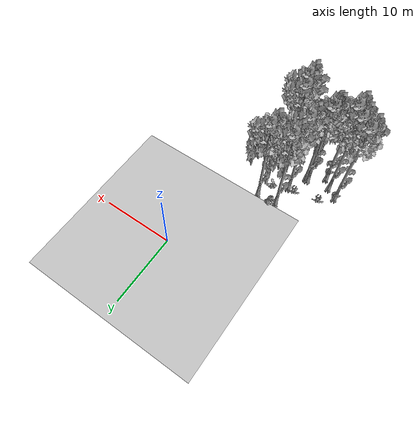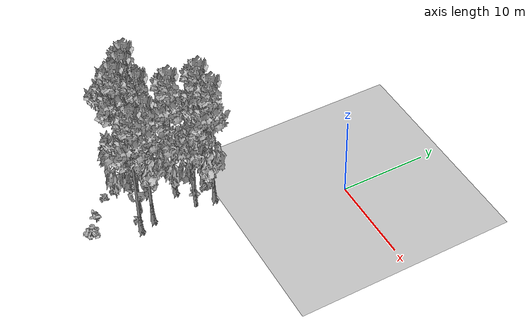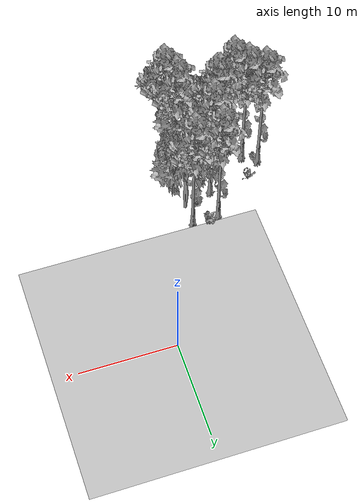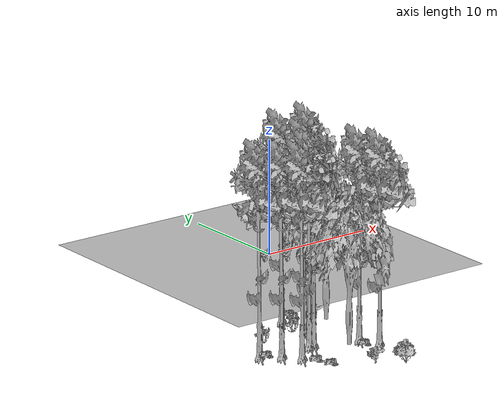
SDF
<sdf version="1.7">
 <world name="default">
  <model name="ground_plane">
   <static>1</static>
   <link name="link">
    <collision name="collision">
     <pose>-50 0 0 0 -0 0</pose>
     <geometry><plane><normal>0 0 1</normal><size>80 80</size></plane></geometry>
     <surface><contact><ode><min_depth>0.01</min_depth><max_vel>0</max_vel></ode></contact></surface>
    </collision>
    <visual name="grass">
     <cast_shadows>0</cast_shadows>
     <geometry>
      <mesh>
       <scale>0.46714285714285714 0.46714285714285714 0.1</scale>
       <uri>file://grass_plane/meshes/grass_plane.dae</uri>
      </mesh>
     </geometry>
    </visual>
   </link>
  </model>
  <model name="Tree 64">
   <static>1</static>
   <pose>-8.918844012901179 -16.294253281476337 0 1.57079 -0 0</pose>
   <link name="link">
    <collision name="collision">
     <geometry><mesh><scale>3.5 5 3.5</scale><uri>model://tree_9/meshes/tree_9.obj</uri></mesh></geometry>
    </collision>
    <visual name="visual">
     <geometry><mesh><scale>3.5 5 3.5</scale><uri>model://tree_9/meshes/tree_9.obj</uri></mesh></geometry>
    </visual>
   </link>
  </model>
  <model name="Tree 74">
   <static>1</static>
   <pose>-12.508498151794864 -20.705829657117896 0 1.57079 -0 0</pose>
   <link name="link">
    <collision name="collision">
     <geometry><mesh><scale>3.5 5 3.5</scale><uri>model://tree_9/meshes/tree_9.obj</uri></mesh></geometry>
    </collision>
    <visual name="visual">
     <geometry><mesh><scale>3.5 5 3.5</scale><uri>model://tree_9/meshes/tree_9.obj</uri></mesh></geometry>
    </visual>
   </link>
  </model>
  <model name="Tree 95">
   <static>1</static>
   <pose>-13.539596763071113 -19.452690196570124 0 1.57079 -0 0</pose>
   <link name="link">
    <collision name="collision">
     <geometry><mesh><scale>3.5 5 3.5</scale><uri>model://tree_9/meshes/tree_9.obj</uri></mesh></geometry>
    </collision>
    <visual name="visual">
     <geometry><mesh><scale>3.5 5 3.5</scale><uri>model://tree_9/meshes/tree_9.obj</uri></mesh></geometry>
    </visual>
   </link>
  </model>
  <model name="Tree 147">
   <static>1</static>
   <pose>-5.930850639686653 -13.01331214414077 0 1.57079 -0 0</pose>
   <link name="link">
    <collision name="collision">
     <geometry><mesh><scale>3.5 5 3.5</scale><uri>model://tree_9/meshes/tree_9.obj</uri></mesh></geometry>
    </collision>
    <visual name="visual">
     <geometry><mesh><scale>3.5 5 3.5</scale><uri>model://tree_9/meshes/tree_9.obj</uri></mesh></geometry>
    </visual>
   </link>
  </model>
  <model name="Tree 256">
   <static>1</static>
   <pose>-5.705377353096829 -21.829884990936144 0 1.57079 -0 0</pose>
   <link name="link">
    <collision name="collision">
     <geometry><mesh><scale>3.5 5 3.5</scale><uri>model://tree_9/meshes/tree_9.obj</uri></mesh></geometry>
    </collision>
    <visual name="visual">
     <geometry><mesh><scale>3.5 5 3.5</scale><uri>model://tree_9/meshes/tree_9.obj</uri></mesh></geometry>
    </visual>
   </link>
  </model>
  <model name="Tree 364">
   <static>1</static>
   <pose>-10.125730915824676 -19.088742059278488 0 1.57079 -0 0</pose>
   <link name="link">
    <collision name="collision">
     <geometry><mesh><scale>3.5 5 3.5</scale><uri>model://tree_9/meshes/tree_9.obj</uri></mesh></geometry>
    </collision>
    <visual name="visual">
     <geometry><mesh><scale>3.5 5 3.5</scale><uri>model://tree_9/meshes/tree_9.obj</uri></mesh></geometry>
    </visual>
   </link>
  </model>
  <model name="Tree 388">
   <static>1</static>
   <pose>-8.072523088091007 -20.89767284808591 0 1.57079 -0 0</pose>
   <link name="link">
    <collision name="collision">
     <geometry><mesh><scale>3.5 5 3.5</scale><uri>model://tree_2/meshes/tree_2.obj</uri></mesh></geometry>
    </collision>
    <visual name="visual">
     <geometry><mesh><scale>3.5 5 3.5</scale><uri>model://tree_2/meshes/tree_2.obj</uri></mesh></geometry>
    </visual>
   </link>
  </model>
  <model name="Tree 392">
   <static>1</static>
   <pose>-5.976125123428531 -15.274133813011346 0 1.57079 -0 0</pose>
   <link name="link">
    <collision name="collision">
     <geometry><mesh><scale>3.5 5 3.5</scale><uri>model://tree_2/meshes/tree_2.obj</uri></mesh></geometry>
    </collision>
    <visual name="visual">
     <geometry><mesh><scale>3.5 5 3.5</scale><uri>model://tree_2/meshes/tree_2.obj</uri></mesh></geometry>
    </visual>
   </link>
  </model>
  <model name="Tree 410">
   <static>1</static>
   <pose>-14.964774732347635 -18.464375149998993 0 1.57079 -0 0</pose>
   <link name="link">
    <collision name="collision">
     <geometry><mesh><scale>3.5 5 3.5</scale><uri>model://tree_9/meshes/tree_9.obj</uri></mesh></geometry>
    </collision>
    <visual name="visual">
     <geometry><mesh><scale>3.5 5 3.5</scale><uri>model://tree_9/meshes/tree_9.obj</uri></mesh></geometry>
    </visual>
   </link>
  </model>
  <model name="Tree 429">
   <static>1</static>
   <pose>-8.693548484604207 -13.096896506971731 0 1.57079 -0 0</pose>
   <link name="link">
    <collision name="collision">
     <geometry><mesh><scale>3.5 5 3.5</scale><uri>model://tree_9/meshes/tree_9.obj</uri></mesh></geometry>
    </collision>
    <visual name="visual">
     <geometry><mesh><scale>3.5 5 3.5</scale><uri>model://tree_9/meshes/tree_9.obj</uri></mesh></geometry>
    </visual>
   </link>
  </model>
  <model name="Tree 510">
   <static>1</static>
   <pose>-10.488340878448167 -19.004493099666533 0 1.57079 -0 0</pose>
   <link name="link">
    <collision name="collision">
     <geometry><mesh><scale>3.5 5 3.5</scale><uri>model://tree_9/meshes/tree_9.obj</uri></mesh></geometry>
    </collision>
    <visual name="visual">
     <geometry><mesh><scale>3.5 5 3.5</scale><uri>model://tree_9/meshes/tree_9.obj</uri></mesh></geometry>
    </visual>
   </link>
  </model>
  <model name="Tree 563">
   <static>1</static>
   <pose>-6.376497807072845 -20.114362117054505 0 1.57079 -0 0</pose>
   <link name="link">
    <collision name="collision">
     <geometry><mesh><scale>3.5 5 3.5</scale><uri>model://tree_9/meshes/tree_9.obj</uri></mesh></geometry>
    </collision>
    <visual name="visual">
     <geometry><mesh><scale>3.5 5 3.5</scale><uri>model://tree_9/meshes/tree_9.obj</uri></mesh></geometry>
    </visual>
   </link>
  </model>
  <model name="Bush 0">
   <static>1</static>
   <pose>-9.05729222005418 -25.498567725752864 0 1.57079 -0 0</pose>
   <link name="link">
    <collision name="collision">
     <geometry><mesh><scale>2 2 2</scale><uri>model://bush_0/meshes/bush_0.obj</uri></mesh></geometry>
     <surface><contact><collide_without_contact>false</collide_without_contact></contact></surface>
    </collision>
    <visual name="visual">
     <geometry><mesh><scale>2 2 2</scale><uri>model://bush_0/meshes/bush_0.obj</uri></mesh></geometry>
    </visual>
   </link>
  </model>
  <model name="Bush 14">
   <static>1</static>
   <pose>-13.237348515737974 -16.684067149657444 0 1.57079 -0 0</pose>
   <link name="link">
    <collision name="collision">
     <geometry><mesh><scale>2 2 2</scale><uri>model://bush_4/meshes/bush_4.obj</uri></mesh></geometry>
     <surface><contact><collide_without_contact>false</collide_without_contact></contact></surface>
    </collision>
    <visual name="visual">
     <geometry><mesh><scale>2 2 2</scale><uri>model://bush_4/meshes/bush_4.obj</uri></mesh></geometry>
    </visual>
   </link>
  </model>
  <model name="Bush 104">
   <static>1</static>
   <pose>-6.826707587531182 -14.893996317995246 0 1.57079 -0 0</pose>
   <link name="link">
    <collision name="collision">
     <geometry><mesh><scale>2 2 2</scale><uri>model://bush_0/meshes/bush_0.obj</uri></mesh></geometry>
     <surface><contact><collide_without_contact>false</collide_without_contact></contact></surface>
    </collision>
    <visual name="visual">
     <geometry><mesh><scale>2 2 2</scale><uri>model://bush_0/meshes/bush_0.obj</uri></mesh></geometry>
    </visual>
   </link>
  </model>
  <model name="Bush 178">
   <static>1</static>
   <pose>-7.103843438604805 -21.624709456680826 0 1.57079 -0 0</pose>
   <link name="link">
    <collision name="collision">
     <geometry><mesh><scale>2 2 2</scale><uri>model://bush_2/meshes/bush_2.obj</uri></mesh></geometry>
     <surface><contact><collide_without_contact>false</collide_without_contact></contact></surface>
    </collision>
    <visual name="visual">
     <geometry><mesh><scale>2 2 2</scale><uri>model://bush_2/meshes/bush_2.obj</uri></mesh></geometry>
    </visual>
   </link>
  </model>
  <model name="Bush 227">
   <static>1</static>
   <pose>-9.84953094320641 -16.050818275082328 0 1.57079 -0 0</pose>
   <link name="link">
    <collision name="collision">
     <geometry><mesh><scale>2 2 2</scale><uri>model://bush_4/meshes/bush_4.obj</uri></mesh></geometry>
     <surface><contact><collide_without_contact>false</collide_without_contact></contact></surface>
    </collision>
    <visual name="visual">
     <geometry><mesh><scale>2 2 2</scale><uri>model://bush_4/meshes/bush_4.obj</uri></mesh></geometry>
    </visual>
   </link>
  </model>
  <model name="Bush 360">
   <static>1</static>
   <pose>-7.117562147508796 -26.861775970287027 0 1.57079 -0 0</pose>
   <link name="link">
    <collision name="collision">
     <geometry><mesh><scale>2 2 2</scale><uri>model://bush_1/meshes/bush_1.obj</uri></mesh></geometry>
     <surface><contact><collide_without_contact>false</collide_without_contact></contact></surface>
    </collision>
    <visual name="visual">
     <geometry><mesh><scale>2 2 2</scale><uri>model://bush_1/meshes/bush_1.obj</uri></mesh></geometry>
    </visual>
   </link>
  </model>
  <model name="Bush 436">
   <static>1</static>
   <pose>-7.769317419110358 -12.735215871789851 0 1.57079 -0 0</pose>
   <link name="link">
    <collision name="collision">
     <geometry><mesh><scale>2 2 2</scale><uri>model://bush_2/meshes/bush_2.obj</uri></mesh></geometry>
     <surface><contact><collide_without_contact>false</collide_without_contact></contact></surface>
    </collision>
    <visual name="visual">
     <geometry><mesh><scale>2 2 2</scale><uri>model://bush_2/meshes/bush_2.obj</uri></mesh></geometry>
    </visual>
   </link>
  </model>
  <model name="Bush 455">
   <static>1</static>
   <pose>-7.860633950082491 -13.39944164049772 0 1.57079 -0 0</pose>
   <link name="link">
    <collision name="collision">
     <geometry><mesh><scale>2 2 2</scale><uri>model://bush_2/meshes/bush_2.obj</uri></mesh></geometry>
     <surface><contact><collide_without_contact>false</collide_without_contact></contact></surface>
    </collision>
    <visual name="visual">
     <geometry><mesh><scale>2 2 2</scale><uri>model://bush_2/meshes/bush_2.obj</uri></mesh></geometry>
    </visual>
   </link>
  </model>
  <model name="Bush 553">
   <static>1</static>
   <pose>-11.86909149240888 -23.50173357347275 0 1.57079 -0 0</pose>
   <link name="link">
    <collision name="collision">
     <geometry><mesh><scale>2 2 2</scale><uri>model://bush_2/meshes/bush_2.obj</uri></mesh></geometry>
     <surface><contact><collide_without_contact>false</collide_without_contact></contact></surface>
    </collision>
    <visual name="visual">
     <geometry><mesh><scale>2 2 2</scale><uri>model://bush_2/meshes/bush_2.obj</uri></mesh></geometry>
    </visual>
   </link>
  </model>
  <model name="Bush 571">
   <static>1</static>
   <pose>-12.32095885376695 -22.20466107506134 0 1.57079 -0 0</pose>
   <link name="link">
    <collision name="collision">
     <geometry><mesh><scale>2 2 2</scale><uri>model://bush_2/meshes/bush_2.obj</uri></mesh></geometry>
     <surface><contact><collide_without_contact>false</collide_without_contact></contact></surface>
    </collision>
    <visual name="visual">
     <geometry><mesh><scale>2 2 2</scale><uri>model://bush_2/meshes/bush_2.obj</uri></mesh></geometry>
    </visual>
   </link>
  </model>
  <model name="Bush 619">
   <static>1</static>
   <pose>-14.858695735552974 -19.126822422477147 0 1.57079 -0 0</pose>
   <link name="link">
    <collision name="collision">
     <geometry><mesh><scale>2 2 2</scale><uri>model://bush_2/meshes/bush_2.obj</uri></mesh></geometry>
     <surface><contact><collide_without_contact>false</collide_without_contact></contact></surface>
    </collision>
    <visual name="visual">
     <geometry><mesh><scale>2 2 2</scale><uri>model://bush_2/meshes/bush_2.obj</uri></mesh></geometry>
    </visual>
   </link>
  </model>
 </world>
</sdf>
